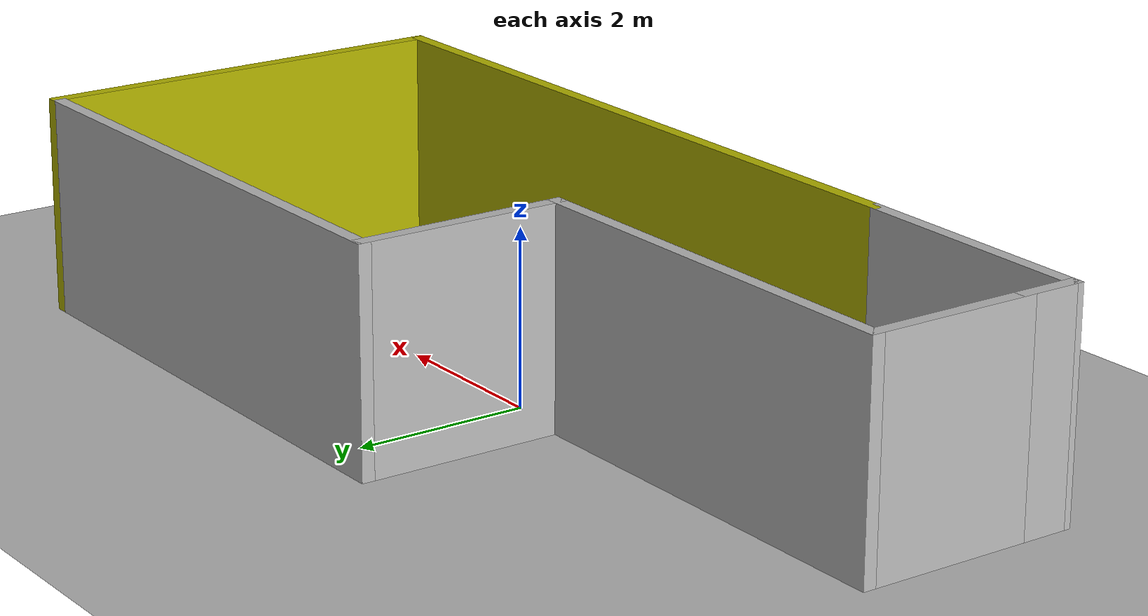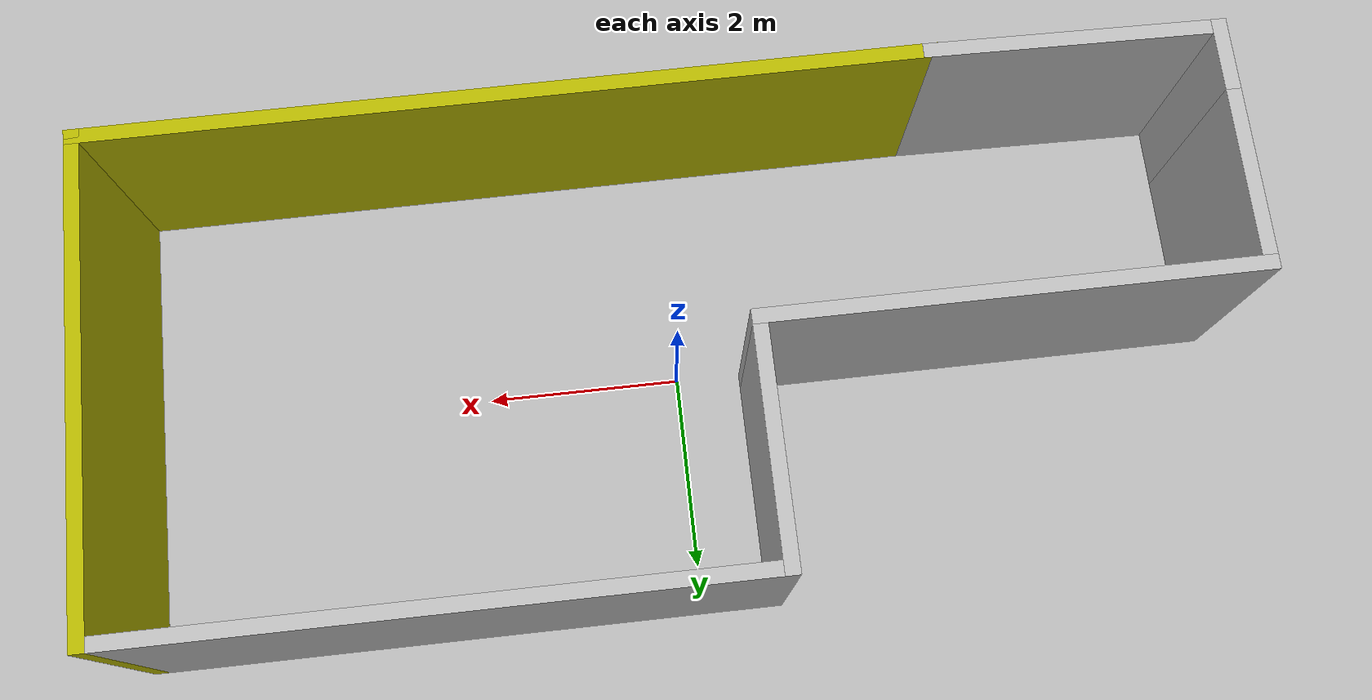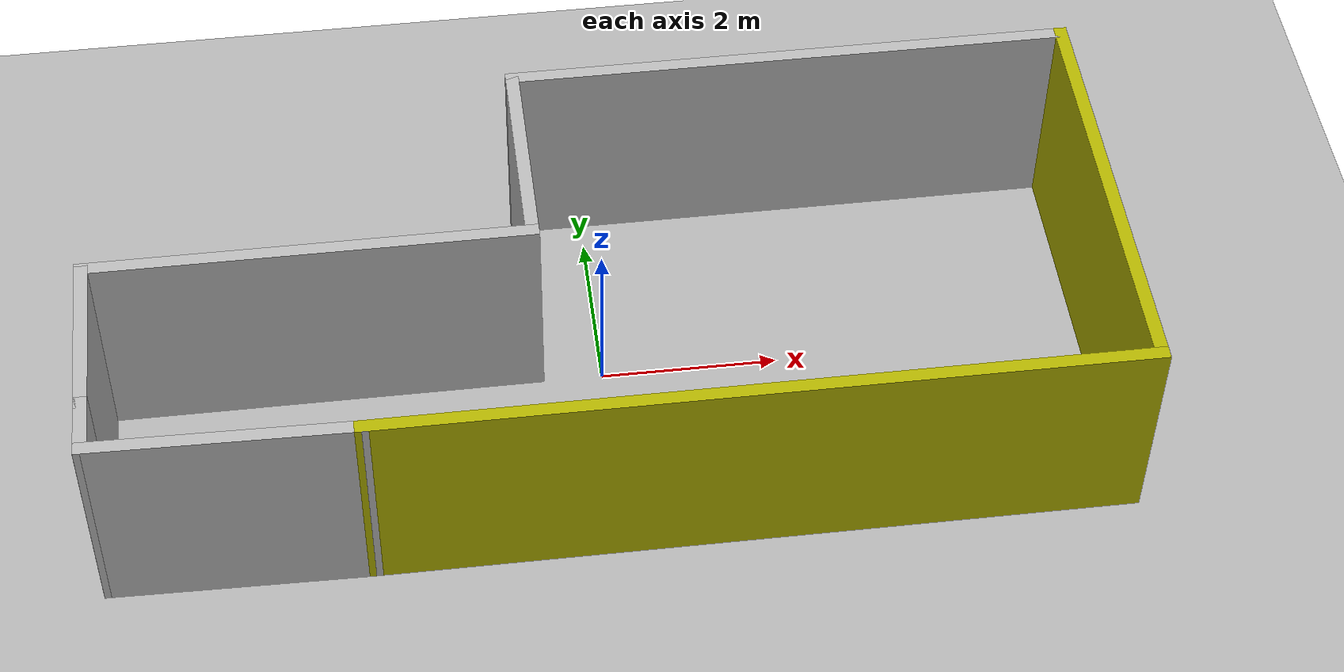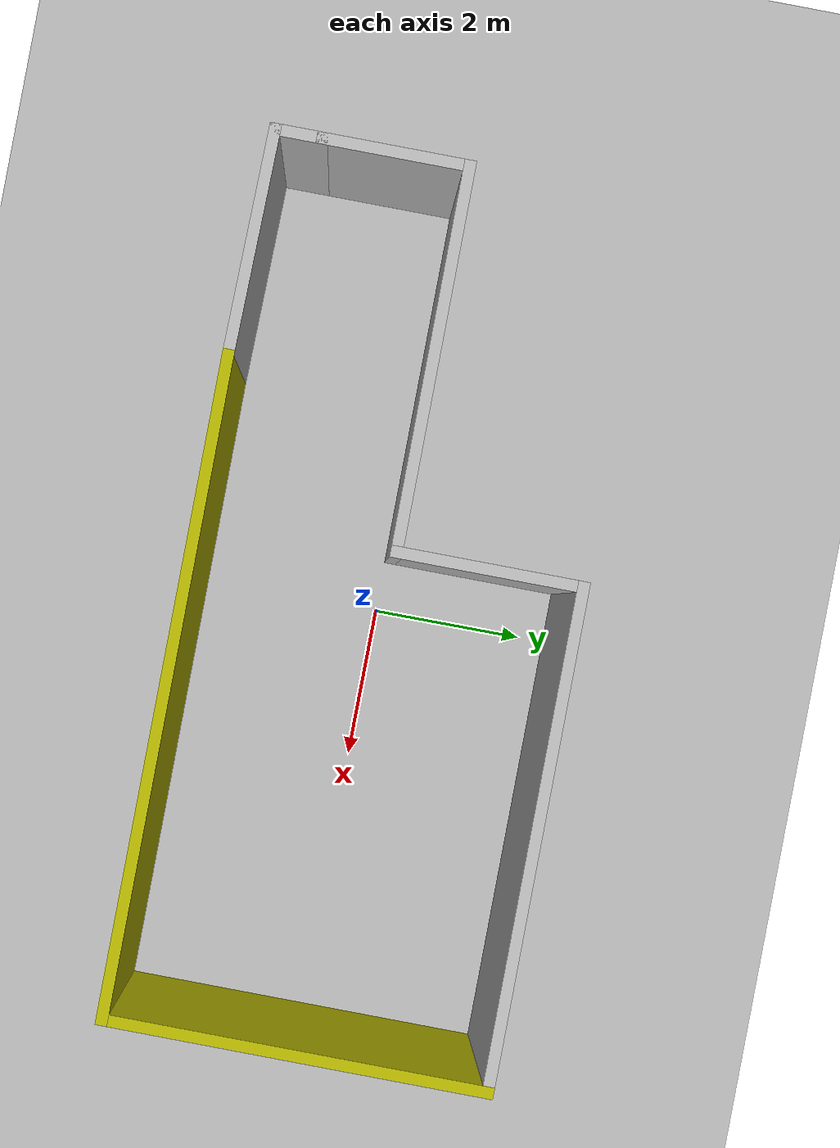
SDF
<?xml version='1.0'?>
<sdf version='1.6'>
  <world name='default'>
        <physics name="1ms" type="ignored">
      <max_step_size>0.001</max_step_size>
      <real_time_factor>1.0</real_time_factor>
    </physics>
    <plugin
      filename="gz-sim-physics-system"
      name="gz::sim::systems::Physics">
    </plugin>
    <plugin
      filename="gz-sim-user-commands-system"
      name="gz::sim::systems::UserCommands">
    </plugin>
    <plugin
      filename="gz-sim-scene-broadcaster-system"
      name="gz::sim::systems::SceneBroadcaster">
    </plugin>
    <plugin
      filename="gz-sim-sensors-system"
      name="gz::sim::systems::Sensors">
      <render_engine>ogre2</render_engine>
    </plugin>
    <plugin
      filename="gz-sim-contact-system"
      name="gz::sim::systems::Contact">
    </plugin>
    <plugin filename="gz-sim-imu-system"
      name="gz::sim::systems::Imu">
    </plugin>

    <light type="directional" name="sun">
      <cast_shadows>true</cast_shadows>
      <pose>0 0 10 0 0 0</pose>
      <diffuse>0.8 0.8 0.8 1</diffuse>
      <specular>0.2 0.2 0.2 1</specular>
      <attenuation>
        <range>1000</range>
        <constant>0.9</constant>
        <linear>0.01</linear>
        <quadratic>0.001</quadratic>
      </attenuation>
      <direction>-0.5 0.1 -0.9</direction>
    </light>
    <plugin filename="gz-sim-triggered-publisher-system"
            name="gz::sim::systems::TriggeredPublisher">
        <input type="gz.msgs.Int32" topic="/keyboard/keypress">
            <match field="data">16777235</match>
        </input>
        <output type="gz.msgs.Twist" topic="/cmd_vel">
            linear: {x: -0.5}, angular: {z: 0.0}
        </output>
    </plugin>
    <plugin filename="gz-sim-triggered-publisher-system"
            name="gz::sim::systems::TriggeredPublisher">
        <input type="gz.msgs.Int32" topic="/keyboard/keypress">
            <match field="data">16777237</match>
        </input>
        <output type="gz.msgs.Twist" topic="/cmd_vel">
            linear: {x: 0.5}, angular: {z: 0.0}
        </output>
    </plugin>

    <plugin filename="gz-sim-triggered-publisher-system"
            name="gz::sim::systems::TriggeredPublisher">
        <input type="gz.msgs.Int32" topic="/keyboard/keypress">
            <match field="data">16777234</match>
        </input>
        <output type="gz.msgs.Twist" topic="/cmd_vel">
            linear: {x: 0.0}, angular: {z: 0.5}
        </output>
    </plugin>

    <plugin filename="gz-sim-triggered-publisher-system"
            name="gz::sim::systems::TriggeredPublisher">
        <input type="gz.msgs.Int32" topic="/keyboard/keypress">
            <match field="data">16777236</match>
        </input>
        <output type="gz.msgs.Twist" topic="/cmd_vel">
            linear: {x: 0.0}, angular: {z: -0.5}
        </output>
    </plugin>

    <model name='ground_plane'>
      <static>1</static>
      <link name='link'>
        <collision name='collision'>
          <geometry>
            <plane>
              <normal>0 0 1</normal>
              <size>100 100</size>
            </plane>
          </geometry>
          <surface>
            <friction>
              <ode>
                <mu>100</mu>
                <mu2>50</mu2>
              </ode>
            </friction>
            <bounce>
              <restitution_coefficient>0.0</restitution_coefficient>
              <threshold>1.0</threshold>
            </bounce>
            <contact>
              <collide_without_contact>false</collide_without_contact>
              <collide_without_contact_bitmask>1</collide_without_contact_bitmask>
            </contact>
          </surface>
        </collision>
        <visual name='visual'>
          <geometry>
            <plane>
              <normal>0 0 1</normal>
              <size>100 100</size>
            </plane>
          </geometry>
          <material>
            <ambient>0.7 0.7 0.7 1</ambient>
            <diffuse>0.7 0.7 0.7 1</diffuse>
          </material>
        </visual>
        <pose frame=''>0 0 0 0 -0 0</pose>
        <self_collide>0</self_collide>
        <kinematic>0</kinematic>
        <gravity>1</gravity>
      </link>
    </model>
    <model name='room'>
      <pose frame=''>0 0 0 0 0 0</pose>
      <static>1</static>
      <link name='Wall_0'>
        <collision name='Wall_0_Collision'>
          <geometry>
            <box>
              <size>8.5 0.15 2.5</size>
            </box>
          </geometry>

        </collision>
        <visual name='Wall_0_Visual'>
          <pose frame=''>0 0 1.25 0 -0 0</pose>
          <geometry>
            <box>
              <size>8.5 0.15 2.5</size>
            </box>
          </geometry>
          <material>
            <ambient>0.7 0.7 0 1</ambient>
            <diffuse>0.7 0.7 0 1</diffuse>
          </material>

        </visual>
        <pose frame=''>1.42565 -2.42435 0 0 -0 0</pose>
        <self_collide>0</self_collide>
        <kinematic>0</kinematic>
        <gravity>1</gravity>
      </link>
      <link name='Wall_1'>
        <collision name='Wall_1_Collision'>
          <geometry>
            <box>
              <size>5 0.15 2.5</size>
            </box>
          </geometry>

        </collision>
        <visual name='Wall_1_Visual'>
          <pose frame=''>0 0 1.25 0 -0 0</pose>
          <geometry>
            <box>
              <size>5 0.15 2.5</size>
            </box>
          </geometry>
          <material>
            <ambient>0.7 0.7 0 1</ambient>
            <diffuse>0.7 0.7 0 1</diffuse>
          </material>
        </visual>
        <pose frame=''>5.60065 0.000652 0 0 -0 1.5708</pose>
        <self_collide>0</self_collide>
        <kinematic>0</kinematic>
        <gravity>1</gravity>
      </link>
      <link name='Wall_2'>
        <collision name='Wall_2_Collision'>
          <geometry>
            <box>
              <size>6.5 0.15 2.5</size>
            </box>
          </geometry>

        </collision>
        <visual name='Wall_2_Visual'>
          <pose frame=''>0 0 1.25 0 -0 0</pose>
          <geometry>
            <box>
              <size>6.5 0.15 2.5</size>
            </box>
          </geometry>

        </visual>
        <pose frame=''>2.42565 2.42565 0 0 -0 3.14159</pose>
        <self_collide>0</self_collide>
        <kinematic>0</kinematic>
        <gravity>1</gravity>
      </link>
      <link name='Wall_3'>
        <collision name='Wall_3_Collision'>
          <geometry>
            <box>
              <size>2.5 0.15 2.5</size>
            </box>
          </geometry>

        </collision>
        <visual name='Wall_3_Visual'>
          <pose frame=''>0 0 1.25 0 -0 0</pose>
          <geometry>
            <box>
              <size>2.5 0.15 2.5</size>
            </box>
          </geometry>

        </visual>
        <pose frame=''>-0.749348 1.25065 0 0 0 -1.5708</pose>
        <self_collide>0</self_collide>
        <kinematic>0</kinematic>
        <gravity>1</gravity>
      </link>
      <link name='Wall_4'>
        <collision name='Wall_4_Collision'>
          <geometry>
            <box>
              <size>5 0.15 2.5</size>
            </box>
          </geometry>

        </collision>
        <visual name='Wall_4_Visual'>
          <pose frame=''>0 0 1.25 0 -0 0</pose>
          <geometry>
            <box>
              <size>5 0.15 2.5</size>
            </box>
          </geometry>

        </visual>
        <pose frame=''>-3.17435 0.075652 0 0 -0 3.14159</pose>
        <self_collide>0</self_collide>
        <kinematic>0</kinematic>
        <gravity>1</gravity>
      </link>
      <link name='Wall_5'>
        <collision name='Wall_5_Collision'>
          <geometry>
            <box>
              <size>2 0.15 2.5</size>
            </box>
          </geometry>

        </collision>
        <visual name='Wall_5_Visual'>
          <pose frame=''>0 0 1.25 0 -0 0</pose>
          <geometry>
            <box>
              <size>2 0.15 2.5</size>
            </box>
          </geometry>

        </visual>
        <pose frame=''>-5.59935 -0.849348 0 0 0 -1.5708</pose>
        <self_collide>0</self_collide>
        <kinematic>0</kinematic>
        <gravity>1</gravity>
      </link>
      <link name='Wall_6'>
        <collision name='Wall_6_Collision'>
          <geometry>
            <box>
              <size>0.75 0.15 2.5</size>
            </box>
          </geometry>

        </collision>
        <visual name='Wall_6_Visual'>
          <pose frame=''>0 0 1.25 0 -0 0</pose>
          <geometry>
            <box>
              <size>0.75 0.15 2.5</size>
            </box>
          </geometry>

        </visual>
        <pose frame=''>-5.59935 -2.07435 0 0 0 -1.5708</pose>
        <self_collide>0</self_collide>
        <kinematic>0</kinematic>
        <gravity>1</gravity>
      </link>
      <link name='Wall_7'>
        <collision name='Wall_7_Collision'>
          <geometry>
            <box>
              <size>3.00044 0.15 2.5</size>
            </box>
          </geometry>

        </collision>
        <visual name='Wall_7_Visual'>
          <pose frame=''>0 0 1.25 0 -0 0</pose>
          <geometry>
            <box>
              <size>3.00044 0.15 2.5</size>
            </box>
          </geometry>

        </visual>
        <pose frame=''>-4.17435 -2.39935 0 0 0 -0.017542</pose>
        <self_collide>0</self_collide>
        <kinematic>0</kinematic>
        <gravity>1</gravity>
      </link>
    </model>
  </world>
</sdf>
